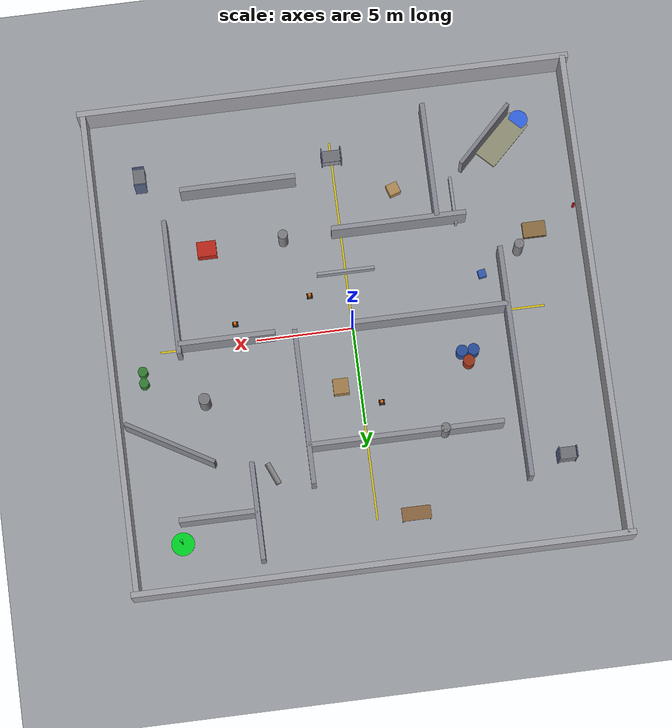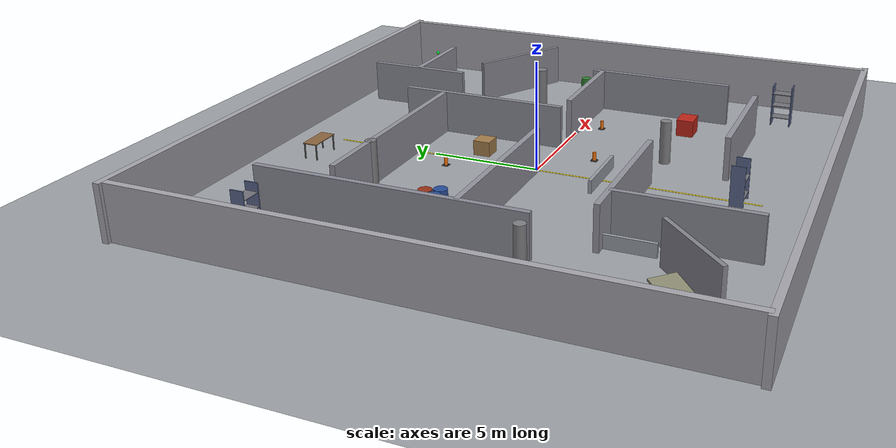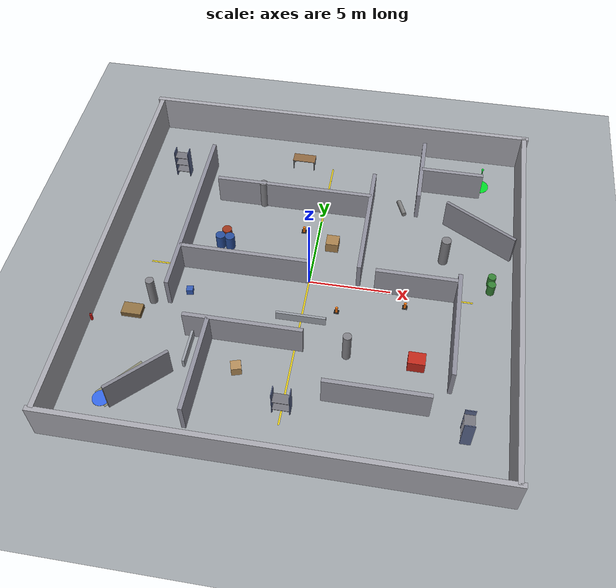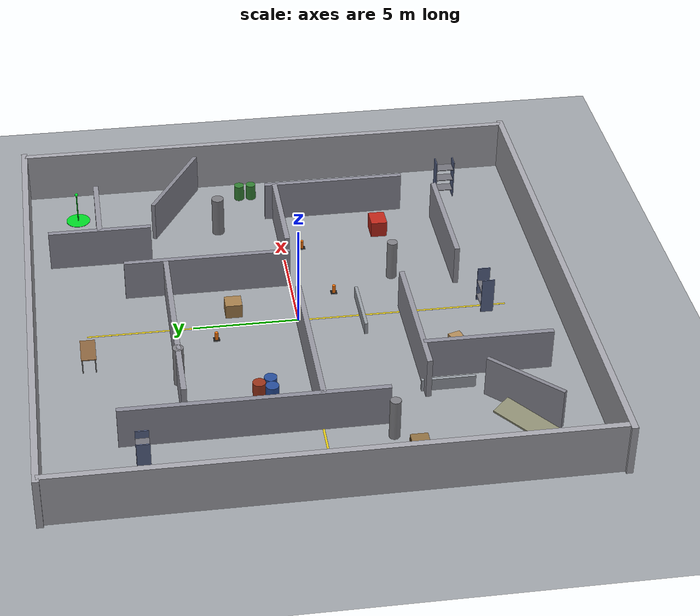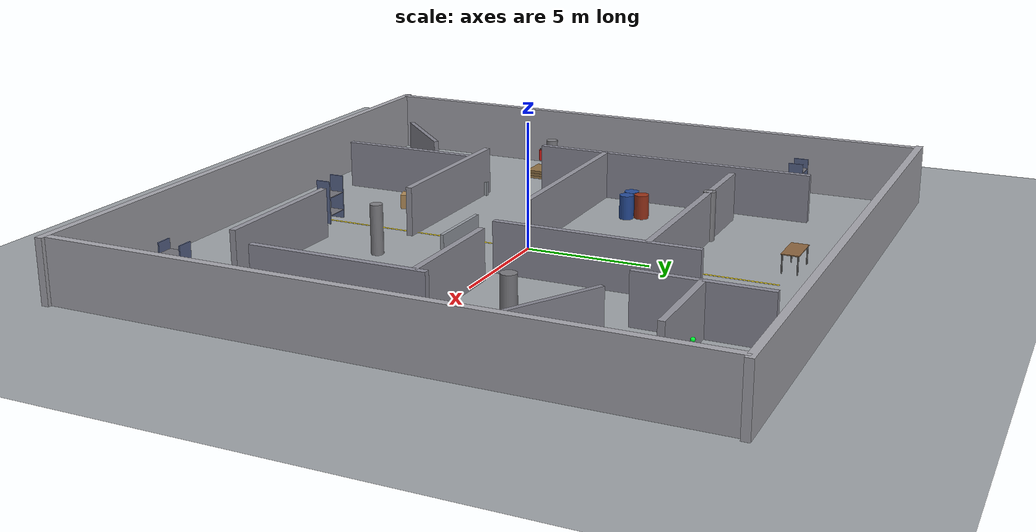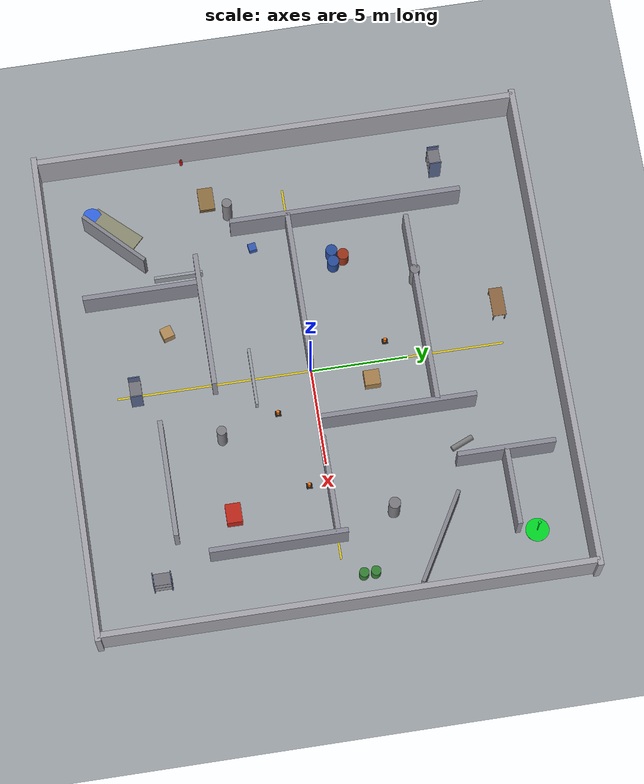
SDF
<?xml version="1.0"?>
<sdf version="1.8">
  <world name="maze_world">

    <!-- 1) SCENE, LIGHTING, ATMOSPHERE                                    -->

    <scene>
      <ambient>0.40 0.40 0.45 1</ambient>
      <background>0.78 0.84 0.95 1</background>
      <shadows>true</shadows>
      <fog>
        <color>0.85 0.90 0.98 1</color>
        <start>25</start>
        <end>60</end>
        <density>0.04</density>
      </fog>
    </scene>

    <!-- Primary sun — warm directional light with strong shadows -->
    <light type="directional" name="sun">
      <cast_shadows>true</cast_shadows>
      <pose>0 0 50 0 0 0</pose>
      <diffuse>1.0 0.96 0.88 1</diffuse>
      <specular>0.4 0.38 0.35 1</specular>
      <attenuation>
        <range>120</range>
        <constant>0.9</constant>
        <linear>0.005</linear>
        <quadratic>0.0005</quadratic>
      </attenuation>
      <direction>-0.4 0.25 -0.9</direction>
    </light>

    <!-- Ambient fill (overhead, soft) -->
    <light type="point" name="ambient_fill">
      <cast_shadows>false</cast_shadows>
      <pose>0 0 12 0 0 0</pose>
      <diffuse>0.35 0.35 0.42 1</diffuse>
      <specular>0.08 0.08 0.08 1</specular>
      <attenuation>
        <range>60</range>
        <constant>0.8</constant>
        <linear>0.015</linear>
        <quadratic>0.001</quadratic>
      </attenuation>
    </light>

    <!-- Corridor spotlight — simulates overhead warehouse lamp NW area -->
    <light type="spot" name="corridor_light_nw">
      <cast_shadows>true</cast_shadows>
      <pose>-6 8 4 0 0 0</pose>
      <diffuse>0.95 0.90 0.75 1</diffuse>
      <specular>0.2 0.2 0.15 1</specular>
      <attenuation>
        <range>15</range>
        <constant>0.7</constant>
        <linear>0.05</linear>
        <quadratic>0.01</quadratic>
      </attenuation>
      <direction>0 0 -1</direction>
      <spot>
        <inner_angle>0.6</inner_angle>
        <outer_angle>1.2</outer_angle>
        <falloff>1.5</falloff>
      </spot>
    </light>

    <!-- Corridor spotlight — SE area -->
    <light type="spot" name="corridor_light_se">
      <cast_shadows>true</cast_shadows>
      <pose>7 -7 4 0 0 0</pose>
      <diffuse>0.95 0.90 0.75 1</diffuse>
      <specular>0.2 0.2 0.15 1</specular>
      <attenuation>
        <range>15</range>
        <constant>0.7</constant>
        <linear>0.05</linear>
        <quadratic>0.01</quadratic>
      </attenuation>
      <direction>0 0 -1</direction>
      <spot>
        <inner_angle>0.6</inner_angle>
        <outer_angle>1.2</outer_angle>
        <falloff>1.5</falloff>
      </spot>
    </light>

    <!-- 2) GROUND PLANE (Warehouse concrete floor)                        -->

    <model name="ground_plane">
      <static>true</static>
      <pose>0 0 0 0 0 0</pose>
      <link name="link">
        <collision name="collision">
          <geometry>
            <plane><normal>0 0 1</normal><size>100 100</size></plane>
          </geometry>
          <surface>
            <friction>
              <ode><mu>0.8</mu><mu2>0.8</mu2></ode>
            </friction>
          </surface>
        </collision>
        <visual name="visual">
          <geometry>
            <plane><normal>0 0 1</normal><size>100 100</size></plane>
          </geometry>
          <material>
            <ambient>0.62 0.64 0.66 1</ambient>
            <diffuse>0.62 0.64 0.66 1</diffuse>
            <specular>0.08 0.08 0.08 1</specular>
          </material>
        </visual>
      </link>
    </model>

    <!-- Floor markings — yellow safety lines along corridors -->
    <model name="floor_line_1">
      <static>true</static>
      <pose>0 0 0.002 0 0 0</pose>
      <link name="link">
        <visual name="v">
          <geometry><box><size>20 0.1 0.003</size></box></geometry>
          <material>
            <ambient>0.9 0.8 0.1 1</ambient>
            <diffuse>0.9 0.8 0.1 1</diffuse>
            <emissive>0.15 0.12 0.0 1</emissive>
          </material>
        </visual>
      </link>
    </model>

    <model name="floor_line_2">
      <static>true</static>
      <pose>0 0 0.002 0 0 1.5708</pose>
      <link name="link">
        <visual name="v">
          <geometry><box><size>20 0.1 0.003</size></box></geometry>
          <material>
            <ambient>0.9 0.8 0.1 1</ambient>
            <diffuse>0.9 0.8 0.1 1</diffuse>
            <emissive>0.15 0.12 0.0 1</emissive>
          </material>
        </visual>
      </link>
    </model>

    <!-- 3) PERIMETER WALLS (25 m × 25 m warehouse, 2.5 m tall)           -->

    <!-- Wall material: industrial concrete gray -->
    <model name="wall_north">
      <pose>0 12.5 1.25 0 0 0</pose>
      <static>true</static>
      <link name="link">
        <visual name="v">
          <geometry><box><size>25.6 0.3 2.5</size></box></geometry>
          <material>
            <ambient>0.65 0.65 0.68 1</ambient>
            <diffuse>0.65 0.65 0.68 1</diffuse>
            <specular>0.03 0.03 0.03 1</specular>
          </material>
        </visual>
        <collision name="c"><geometry><box><size>25.6 0.3 2.5</size></box></geometry></collision>
      </link>
    </model>

    <model name="wall_south">
      <pose>0 -12.5 1.25 0 0 0</pose>
      <static>true</static>
      <link name="link">
        <visual name="v">
          <geometry><box><size>25.6 0.3 2.5</size></box></geometry>
          <material>
            <ambient>0.65 0.65 0.68 1</ambient>
            <diffuse>0.65 0.65 0.68 1</diffuse>
            <specular>0.03 0.03 0.03 1</specular>
          </material>
        </visual>
        <collision name="c"><geometry><box><size>25.6 0.3 2.5</size></box></geometry></collision>
      </link>
    </model>

    <model name="wall_east">
      <pose>12.5 0 1.25 0 0 0</pose>
      <static>true</static>
      <link name="link">
        <visual name="v">
          <geometry><box><size>0.3 25 2.5</size></box></geometry>
          <material>
            <ambient>0.65 0.65 0.68 1</ambient>
            <diffuse>0.65 0.65 0.68 1</diffuse>
            <specular>0.03 0.03 0.03 1</specular>
          </material>
        </visual>
        <collision name="c"><geometry><box><size>0.3 25 2.5</size></box></geometry></collision>
      </link>
    </model>

    <model name="wall_west">
      <pose>-12.5 0 1.25 0 0 0</pose>
      <static>true</static>
      <link name="link">
        <visual name="v">
          <geometry><box><size>0.3 25 2.5</size></box></geometry>
          <material>
            <ambient>0.65 0.65 0.68 1</ambient>
            <diffuse>0.65 0.65 0.68 1</diffuse>
            <specular>0.03 0.03 0.03 1</specular>
          </material>
        </visual>
        <collision name="c"><geometry><box><size>0.3 25 2.5</size></box></geometry></collision>
      </link>
    </model>

    <!-- 4) INNER MAZE WALLS (Corridors, rooms, dead-ends)                 -->

    <!-- ── Horizontal walls (along X) ── -->

    <!-- Long central divider with gap -->
    <model name="wall_h_center_left">
      <pose>-4 0 1.0 0 0 0</pose>
      <static>true</static>
      <link name="link">
        <visual name="v"><geometry><box><size>8 0.25 2.0</size></box></geometry>
          <material><ambient>0.58 0.58 0.62 1</ambient><diffuse>0.58 0.58 0.62 1</diffuse></material>
        </visual>
        <collision name="c"><geometry><box><size>8 0.25 2.0</size></box></geometry></collision>
      </link>
    </model>

    <model name="wall_h_center_right">
      <pose>6.5 0 1.0 0 0 0</pose>
      <static>true</static>
      <link name="link">
        <visual name="v"><geometry><box><size>5 0.25 2.0</size></box></geometry>
          <material><ambient>0.58 0.58 0.62 1</ambient><diffuse>0.58 0.58 0.62 1</diffuse></material>
        </visual>
        <collision name="c"><geometry><box><size>5 0.25 2.0</size></box></geometry></collision>
      </link>
    </model>

    <!-- North corridor wall -->
    <model name="wall_h_north_corridor">
      <pose>-2 6 1.0 0 0 0</pose>
      <static>true</static>
      <link name="link">
        <visual name="v"><geometry><box><size>10 0.25 2.0</size></box></geometry>
          <material><ambient>0.58 0.58 0.62 1</ambient><diffuse>0.58 0.58 0.62 1</diffuse></material>
        </visual>
        <collision name="c"><geometry><box><size>10 0.25 2.0</size></box></geometry></collision>
      </link>
    </model>

    <!-- Short dead-end wall upper area -->
    <model name="wall_h_deadend_north">
      <pose>8 9 1.0 0 0 0</pose>
      <static>true</static>
      <link name="link">
        <visual name="v"><geometry><box><size>4 0.25 2.0</size></box></geometry>
          <material><ambient>0.58 0.58 0.62 1</ambient><diffuse>0.58 0.58 0.62 1</diffuse></material>
        </visual>
        <collision name="c"><geometry><box><size>4 0.25 2.0</size></box></geometry></collision>
      </link>
    </model>

    <!-- South corridor wall -->
    <model name="wall_h_south_corridor">
      <pose>-3 -5 1.0 0 0 0</pose>
      <static>true</static>
      <link name="link">
        <visual name="v"><geometry><box><size>7 0.25 2.0</size></box></geometry>
          <material><ambient>0.58 0.58 0.62 1</ambient><diffuse>0.58 0.58 0.62 1</diffuse></material>
        </visual>
        <collision name="c"><geometry><box><size>7 0.25 2.0</size></box></geometry></collision>
      </link>
    </model>

    <!-- Far south room wall -->
    <model name="wall_h_south_room">
      <pose>5 -8 1.0 0 0 0</pose>
      <static>true</static>
      <link name="link">
        <visual name="v"><geometry><box><size>6 0.25 2.0</size></box></geometry>
          <material><ambient>0.58 0.58 0.62 1</ambient><diffuse>0.58 0.58 0.62 1</diffuse></material>
        </visual>
        <collision name="c"><geometry><box><size>6 0.25 2.0</size></box></geometry></collision>
      </link>
    </model>

    <!-- ── Vertical walls (along Y) ── -->

    <!-- West vertical corridor -->
    <model name="wall_v_west_corridor">
      <pose>-8 3 1.0 0 0 0</pose>
      <static>true</static>
      <link name="link">
        <visual name="v"><geometry><box><size>0.25 12 2.0</size></box></geometry>
          <material><ambient>0.55 0.55 0.60 1</ambient><diffuse>0.55 0.55 0.60 1</diffuse></material>
        </visual>
        <collision name="c"><geometry><box><size>0.25 12 2.0</size></box></geometry></collision>
      </link>
    </model>

    <!-- Central vertical barrier -->
    <model name="wall_v_center">
      <pose>3 4 1.0 0 0 0</pose>
      <static>true</static>
      <link name="link">
        <visual name="v"><geometry><box><size>0.25 8 2.0</size></box></geometry>
          <material><ambient>0.55 0.55 0.60 1</ambient><diffuse>0.55 0.55 0.60 1</diffuse></material>
        </visual>
        <collision name="c"><geometry><box><size>0.25 8 2.0</size></box></geometry></collision>
      </link>
    </model>

    <!-- East corridor divider -->
    <model name="wall_v_east_divider">
      <pose>9 -3 1.0 0 0 0</pose>
      <static>true</static>
      <link name="link">
        <visual name="v"><geometry><box><size>0.25 7 2.0</size></box></geometry>
          <material><ambient>0.55 0.55 0.60 1</ambient><diffuse>0.55 0.55 0.60 1</diffuse></material>
        </visual>
        <collision name="c"><geometry><box><size>0.25 7 2.0</size></box></geometry></collision>
      </link>
    </model>

    <!-- SW room partition -->
    <model name="wall_v_sw_partition">
      <pose>-5 -8 1.0 0 0 0</pose>
      <static>true</static>
      <link name="link">
        <visual name="v"><geometry><box><size>0.25 6 2.0</size></box></geometry>
          <material><ambient>0.55 0.55 0.60 1</ambient><diffuse>0.55 0.55 0.60 1</diffuse></material>
        </visual>
        <collision name="c"><geometry><box><size>0.25 6 2.0</size></box></geometry></collision>
      </link>
    </model>

    <!-- NE corner room wall -->
    <model name="wall_v_ne_room">
      <pose>6 9 1.0 0 0 0</pose>
      <static>true</static>
      <link name="link">
        <visual name="v"><geometry><box><size>0.25 5 2.0</size></box></geometry>
          <material><ambient>0.55 0.55 0.60 1</ambient><diffuse>0.55 0.55 0.60 1</diffuse></material>
        </visual>
        <collision name="c"><geometry><box><size>0.25 5 2.0</size></box></geometry></collision>
      </link>
    </model>

    <!-- ── Diagonal / angled walls ── -->

    <!-- Angled barrier SW -->
    <model name="wall_angled_sw">
      <pose>-8 -9 1.0 0 0 0.7854</pose>
      <static>true</static>
      <link name="link">
        <visual name="v"><geometry><box><size>4 0.2 2.0</size></box></geometry>
          <material><ambient>0.52 0.52 0.56 1</ambient><diffuse>0.52 0.52 0.56 1</diffuse></material>
        </visual>
        <collision name="c"><geometry><box><size>4 0.2 2.0</size></box></geometry></collision>
      </link>
    </model>

    <!-- Angled barrier NE -->
    <model name="wall_angled_ne">
      <pose>10 5 1.0 0 0 -0.5236</pose>
      <static>true</static>
      <link name="link">
        <visual name="v"><geometry><box><size>5 0.2 2.0</size></box></geometry>
          <material><ambient>0.52 0.52 0.56 1</ambient><diffuse>0.52 0.52 0.56 1</diffuse></material>
        </visual>
        <collision name="c"><geometry><box><size>5 0.2 2.0</size></box></geometry></collision>
      </link>
    </model>

    <!-- 5) STRUCTURAL PILLARS                                             -->

    <model name="pillar_1">
      <pose>-4 6 1.0 0 0 0</pose>
      <static>true</static>
      <link name="link">
        <visual name="v"><geometry><cylinder><radius>0.25</radius><length>2.0</length></cylinder></geometry>
          <material><ambient>0.50 0.50 0.52 1</ambient><diffuse>0.50 0.50 0.52 1</diffuse></material>
        </visual>
        <collision name="c"><geometry><cylinder><radius>0.25</radius><length>2.0</length></cylinder></geometry></collision>
      </link>
    </model>

    <model name="pillar_2">
      <pose>3 -5 1.0 0 0 0</pose>
      <static>true</static>
      <link name="link">
        <visual name="v"><geometry><cylinder><radius>0.25</radius><length>2.0</length></cylinder></geometry>
          <material><ambient>0.50 0.50 0.52 1</ambient><diffuse>0.50 0.50 0.52 1</diffuse></material>
        </visual>
        <collision name="c"><geometry><cylinder><radius>0.25</radius><length>2.0</length></cylinder></geometry></collision>
      </link>
    </model>

    <model name="pillar_3">
      <pose>8 3 1.0 0 0 0</pose>
      <static>true</static>
      <link name="link">
        <visual name="v"><geometry><cylinder><radius>0.30</radius><length>2.0</length></cylinder></geometry>
          <material><ambient>0.48 0.48 0.50 1</ambient><diffuse>0.48 0.48 0.50 1</diffuse></material>
        </visual>
        <collision name="c"><geometry><cylinder><radius>0.30</radius><length>2.0</length></cylinder></geometry></collision>
      </link>
    </model>

    <model name="pillar_4">
      <pose>-9 -3 1.0 0 0 0</pose>
      <static>true</static>
      <link name="link">
        <visual name="v"><geometry><cylinder><radius>0.25</radius><length>2.0</length></cylinder></geometry>
          <material><ambient>0.50 0.50 0.52 1</ambient><diffuse>0.50 0.50 0.52 1</diffuse></material>
        </visual>
        <collision name="c"><geometry><cylinder><radius>0.25</radius><length>2.0</length></cylinder></geometry></collision>
      </link>
    </model>

    <!-- 6) WAREHOUSE SHELVING UNITS                                       -->

    <!-- Shelf macro: upright + 3 shelves -->
    <!-- Shelf Unit A (NW warehouse area) -->
    <model name="shelf_unit_a">
      <pose>-10 8 0 0 0 0</pose>
      <static>true</static>
      <link name="link">
        <!-- Left upright -->
        <visual name="upright_l"><geometry><box><size>0.05 0.6 2.0</size></box></geometry>
          <pose>-0.45 0 1.0 0 0 0</pose>
          <material><ambient>0.35 0.40 0.55 1</ambient><diffuse>0.35 0.40 0.55 1</diffuse></material>
        </visual>
        <collision name="upright_l_c"><geometry><box><size>0.05 0.6 2.0</size></box></geometry>
          <pose>-0.45 0 1.0 0 0 0</pose>
        </collision>
        <!-- Right upright -->
        <visual name="upright_r"><geometry><box><size>0.05 0.6 2.0</size></box></geometry>
          <pose>0.45 0 1.0 0 0 0</pose>
          <material><ambient>0.35 0.40 0.55 1</ambient><diffuse>0.35 0.40 0.55 1</diffuse></material>
        </visual>
        <collision name="upright_r_c"><geometry><box><size>0.05 0.6 2.0</size></box></geometry>
          <pose>0.45 0 1.0 0 0 0</pose>
        </collision>
        <!-- Bottom shelf -->
        <visual name="shelf_bot"><geometry><box><size>0.9 0.6 0.03</size></box></geometry>
          <pose>0 0 0.4 0 0 0</pose>
          <material><ambient>0.45 0.45 0.48 1</ambient><diffuse>0.45 0.45 0.48 1</diffuse></material>
        </visual>
        <collision name="shelf_bot_c"><geometry><box><size>0.9 0.6 0.03</size></box></geometry>
          <pose>0 0 0.4 0 0 0</pose>
        </collision>
        <!-- Middle shelf -->
        <visual name="shelf_mid"><geometry><box><size>0.9 0.6 0.03</size></box></geometry>
          <pose>0 0 1.0 0 0 0</pose>
          <material><ambient>0.45 0.45 0.48 1</ambient><diffuse>0.45 0.45 0.48 1</diffuse></material>
        </visual>
        <collision name="shelf_mid_c"><geometry><box><size>0.9 0.6 0.03</size></box></geometry>
          <pose>0 0 1.0 0 0 0</pose>
        </collision>
        <!-- Top shelf -->
        <visual name="shelf_top"><geometry><box><size>0.9 0.6 0.03</size></box></geometry>
          <pose>0 0 1.6 0 0 0</pose>
          <material><ambient>0.45 0.45 0.48 1</ambient><diffuse>0.45 0.45 0.48 1</diffuse></material>
        </visual>
        <collision name="shelf_top_c"><geometry><box><size>0.9 0.6 0.03</size></box></geometry>
          <pose>0 0 1.6 0 0 0</pose>
        </collision>
      </link>
    </model>

    <!-- Shelf Unit B (SE storage area) -->
    <model name="shelf_unit_b">
      <pose>10 -9 0 0 0 1.5708</pose>
      <static>true</static>
      <link name="link">
        <visual name="upright_l"><geometry><box><size>0.05 0.6 2.0</size></box></geometry>
          <pose>-0.45 0 1.0 0 0 0</pose>
          <material><ambient>0.35 0.40 0.55 1</ambient><diffuse>0.35 0.40 0.55 1</diffuse></material>
        </visual>
        <collision name="upright_l_c"><geometry><box><size>0.05 0.6 2.0</size></box></geometry>
          <pose>-0.45 0 1.0 0 0 0</pose>
        </collision>
        <visual name="upright_r"><geometry><box><size>0.05 0.6 2.0</size></box></geometry>
          <pose>0.45 0 1.0 0 0 0</pose>
          <material><ambient>0.35 0.40 0.55 1</ambient><diffuse>0.35 0.40 0.55 1</diffuse></material>
        </visual>
        <collision name="upright_r_c"><geometry><box><size>0.05 0.6 2.0</size></box></geometry>
          <pose>0.45 0 1.0 0 0 0</pose>
        </collision>
        <visual name="shelf_bot"><geometry><box><size>0.9 0.6 0.03</size></box></geometry>
          <pose>0 0 0.4 0 0 0</pose>
          <material><ambient>0.45 0.45 0.48 1</ambient><diffuse>0.45 0.45 0.48 1</diffuse></material>
        </visual>
        <collision name="shelf_bot_c"><geometry><box><size>0.9 0.6 0.03</size></box></geometry>
          <pose>0 0 0.4 0 0 0</pose>
        </collision>
        <visual name="shelf_mid"><geometry><box><size>0.9 0.6 0.03</size></box></geometry>
          <pose>0 0 1.0 0 0 0</pose>
          <material><ambient>0.45 0.45 0.48 1</ambient><diffuse>0.45 0.45 0.48 1</diffuse></material>
        </visual>
        <collision name="shelf_mid_c"><geometry><box><size>0.9 0.6 0.03</size></box></geometry>
          <pose>0 0 1.0 0 0 0</pose>
        </collision>
        <visual name="shelf_top"><geometry><box><size>0.9 0.6 0.03</size></box></geometry>
          <pose>0 0 1.6 0 0 0</pose>
          <material><ambient>0.45 0.45 0.48 1</ambient><diffuse>0.45 0.45 0.48 1</diffuse></material>
        </visual>
        <collision name="shelf_top_c"><geometry><box><size>0.9 0.6 0.03</size></box></geometry>
          <pose>0 0 1.6 0 0 0</pose>
        </collision>
      </link>
    </model>

    <!-- Shelf Unit C (center-south) -->
    <model name="shelf_unit_c">
      <pose>0 -9 0 0 0 0</pose>
      <static>true</static>
      <link name="link">
        <visual name="upright_l"><geometry><box><size>0.05 0.6 1.8</size></box></geometry>
          <pose>-0.5 0 0.9 0 0 0</pose>
          <material><ambient>0.35 0.40 0.55 1</ambient><diffuse>0.35 0.40 0.55 1</diffuse></material>
        </visual>
        <collision name="upright_l_c"><geometry><box><size>0.05 0.6 1.8</size></box></geometry>
          <pose>-0.5 0 0.9 0 0 0</pose>
        </collision>
        <visual name="upright_r"><geometry><box><size>0.05 0.6 1.8</size></box></geometry>
          <pose>0.5 0 0.9 0 0 0</pose>
          <material><ambient>0.35 0.40 0.55 1</ambient><diffuse>0.35 0.40 0.55 1</diffuse></material>
        </visual>
        <collision name="upright_r_c"><geometry><box><size>0.05 0.6 1.8</size></box></geometry>
          <pose>0.5 0 0.9 0 0 0</pose>
        </collision>
        <visual name="shelf_bot"><geometry><box><size>1.0 0.6 0.03</size></box></geometry>
          <pose>0 0 0.35 0 0 0</pose>
          <material><ambient>0.45 0.45 0.48 1</ambient><diffuse>0.45 0.45 0.48 1</diffuse></material>
        </visual>
        <collision name="shelf_bot_c"><geometry><box><size>1.0 0.6 0.03</size></box></geometry>
          <pose>0 0 0.35 0 0 0</pose>
        </collision>
        <visual name="shelf_top"><geometry><box><size>1.0 0.6 0.03</size></box></geometry>
          <pose>0 0 1.1 0 0 0</pose>
          <material><ambient>0.45 0.45 0.48 1</ambient><diffuse>0.45 0.45 0.48 1</diffuse></material>
        </visual>
        <collision name="shelf_top_c"><geometry><box><size>1.0 0.6 0.03</size></box></geometry>
          <pose>0 0 1.1 0 0 0</pose>
        </collision>
      </link>
    </model>

    <!-- 7) BARRELS AND CRATES (Scattered obstacles)                       -->

    <!-- Industrial barrel (static) -->
    <model name="barrel_1">
      <pose>-6 2 0.5 0 0 0</pose>
      <static>true</static>
      <link name="link">
        <visual name="v"><geometry><cylinder><radius>0.3</radius><length>1.0</length></cylinder></geometry>
          <material><ambient>0.15 0.30 0.60 1</ambient><diffuse>0.15 0.30 0.60 1</diffuse></material>
        </visual>
        <collision name="c"><geometry><cylinder><radius>0.3</radius><length>1.0</length></cylinder></geometry></collision>
      </link>
    </model>

    <model name="barrel_2">
      <pose>-5.4 2 0.5 0 0 0</pose>
      <static>true</static>
      <link name="link">
        <visual name="v"><geometry><cylinder><radius>0.3</radius><length>1.0</length></cylinder></geometry>
          <material><ambient>0.15 0.30 0.60 1</ambient><diffuse>0.15 0.30 0.60 1</diffuse></material>
        </visual>
        <collision name="c"><geometry><cylinder><radius>0.3</radius><length>1.0</length></cylinder></geometry></collision>
      </link>
    </model>

    <model name="barrel_3">
      <pose>-5.7 2.55 0.5 0 0 0</pose>
      <static>true</static>
      <link name="link">
        <visual name="v"><geometry><cylinder><radius>0.3</radius><length>1.0</length></cylinder></geometry>
          <material><ambient>0.60 0.20 0.10 1</ambient><diffuse>0.60 0.20 0.10 1</diffuse></material>
        </visual>
        <collision name="c"><geometry><cylinder><radius>0.3</radius><length>1.0</length></cylinder></geometry></collision>
      </link>
    </model>

    <!-- Barrel cluster near east wall -->
    <model name="barrel_east_1">
      <pose>11 1 0.4 0 0 0</pose>
      <static>true</static>
      <link name="link">
        <visual name="v"><geometry><cylinder><radius>0.25</radius><length>0.8</length></cylinder></geometry>
          <material><ambient>0.20 0.50 0.20 1</ambient><diffuse>0.20 0.50 0.20 1</diffuse></material>
        </visual>
        <collision name="c"><geometry><cylinder><radius>0.25</radius><length>0.8</length></cylinder></geometry></collision>
      </link>
    </model>

    <model name="barrel_east_2">
      <pose>11 1.6 0.4 0 0 0</pose>
      <static>true</static>
      <link name="link">
        <visual name="v"><geometry><cylinder><radius>0.25</radius><length>0.8</length></cylinder></geometry>
          <material><ambient>0.20 0.50 0.20 1</ambient><diffuse>0.20 0.50 0.20 1</diffuse></material>
        </visual>
        <collision name="c"><geometry><cylinder><radius>0.25</radius><length>0.8</length></cylinder></geometry></collision>
      </link>
    </model>

    <!-- 8) DYNAMIC / MOVABLE OBSTACLES                                    -->

    <!-- Wooden pallet crate (pushable) -->
    <model name="crate_dynamic_1">
      <pose>1 3 0.35 0 0 0</pose>
      <link name="link">
        <inertial><mass>8</mass>
          <inertia><ixx>0.27</ixx><iyy>0.27</iyy><izz>0.27</izz><ixy>0</ixy><ixz>0</ixz><iyz>0</iyz></inertia>
        </inertial>
        <visual name="v"><geometry><box><size>0.8 0.8 0.7</size></box></geometry>
          <material><ambient>0.65 0.50 0.30 1</ambient><diffuse>0.65 0.50 0.30 1</diffuse></material>
        </visual>
        <collision name="c"><geometry><box><size>0.8 0.8 0.7</size></box></geometry>
          <surface><friction><ode><mu>0.6</mu><mu2>0.6</mu2></ode></friction></surface>
        </collision>
      </link>
    </model>

    <model name="crate_dynamic_2">
      <pose>-3 -7 0.3 0 0 0.3</pose>
      <link name="link">
        <inertial><mass>5</mass>
          <inertia><ixx>0.13</ixx><iyy>0.13</iyy><izz>0.13</izz><ixy>0</ixy><ixz>0</ixz><iyz>0</iyz></inertia>
        </inertial>
        <visual name="v"><geometry><box><size>0.6 0.6 0.6</size></box></geometry>
          <material><ambient>0.70 0.55 0.35 1</ambient><diffuse>0.70 0.55 0.35 1</diffuse></material>
        </visual>
        <collision name="c"><geometry><box><size>0.6 0.6 0.6</size></box></geometry>
          <surface><friction><ode><mu>0.6</mu><mu2>0.6</mu2></ode></friction></surface>
        </collision>
      </link>
    </model>

    <!-- Red hazard crate -->
    <model name="crate_hazard">
      <pose>7 -5 0.4 0 0 0</pose>
      <link name="link">
        <inertial><mass>12</mass>
          <inertia><ixx>0.5</ixx><iyy>0.5</iyy><izz>0.5</izz><ixy>0</ixy><ixz>0</ixz><iyz>0</iyz></inertia>
        </inertial>
        <visual name="v"><geometry><box><size>1.0 0.8 0.8</size></box></geometry>
          <material><ambient>0.75 0.15 0.10 1</ambient><diffuse>0.75 0.15 0.10 1</diffuse></material>
        </visual>
        <collision name="c"><geometry><box><size>1.0 0.8 0.8</size></box></geometry>
          <surface><friction><ode><mu>0.7</mu><mu2>0.7</mu2></ode></friction></surface>
        </collision>
      </link>
    </model>

    <!-- Small blue box (light, easily pushed) -->
    <model name="box_small_1">
      <pose>-7 -2 0.2 0 0 0.15</pose>
      <link name="link">
        <inertial><mass>2</mass>
          <inertia><ixx>0.03</ixx><iyy>0.03</iyy><izz>0.03</izz><ixy>0</ixy><ixz>0</ixz><iyz>0</iyz></inertia>
        </inertial>
        <visual name="v"><geometry><box><size>0.4 0.4 0.4</size></box></geometry>
          <material><ambient>0.20 0.35 0.70 1</ambient><diffuse>0.20 0.35 0.70 1</diffuse></material>
        </visual>
        <collision name="c"><geometry><box><size>0.4 0.4 0.4</size></box></geometry>
          <surface><friction><ode><mu>0.5</mu><mu2>0.5</mu2></ode></friction></surface>
        </collision>
      </link>
    </model>

    <!-- Cylinder obstacle (rolling hazard) -->
    <model name="pipe_obstacle">
      <pose>5 7 0.15 1.5708 0 0.4</pose>
      <link name="link">
        <inertial><mass>3</mass>
          <inertia><ixx>0.377</ixx><iyy>0.377</iyy><izz>0.034</izz><ixy>0</ixy><ixz>0</ixz><iyz>0</iyz></inertia>
        </inertial>
        <visual name="v"><geometry><cylinder><radius>0.15</radius><length>1.2</length></cylinder></geometry>
          <material><ambient>0.50 0.50 0.50 1</ambient><diffuse>0.50 0.50 0.50 1</diffuse></material>
        </visual>
        <collision name="c"><geometry><cylinder><radius>0.15</radius><length>1.2</length></cylinder></geometry>
          <surface><friction><ode><mu>0.4</mu><mu2>0.4</mu2></ode></friction></surface>
        </collision>
      </link>
    </model>

    <!-- 9) RAMP (Elevation change for SLAM challenge)                     -->

    <model name="ramp_south">
      <pose>-9 -9 0.15 0 -0.15 0.7854</pose>
      <static>true</static>
      <link name="link">
        <visual name="v"><geometry><box><size>3.0 1.2 0.08</size></box></geometry>
          <material>
            <ambient>0.55 0.55 0.45 1</ambient>
            <diffuse>0.55 0.55 0.45 1</diffuse>
          </material>
        </visual>
        <collision name="c"><geometry><box><size>3.0 1.2 0.08</size></box></geometry>
          <surface><friction><ode><mu>0.9</mu><mu2>0.9</mu2></ode></friction></surface>
        </collision>
      </link>
    </model>

    <!-- 10) TABLE / WORKBENCH                                             -->

    <model name="workbench">
      <pose>-2 10 0 0 0 0</pose>
      <static>true</static>
      <link name="link">
        <!-- Table top -->
        <visual name="top"><geometry><box><size>1.5 0.7 0.04</size></box></geometry>
          <pose>0 0 0.75 0 0 0</pose>
          <material><ambient>0.55 0.40 0.25 1</ambient><diffuse>0.55 0.40 0.25 1</diffuse></material>
        </visual>
        <collision name="top_c"><geometry><box><size>1.5 0.7 0.04</size></box></geometry>
          <pose>0 0 0.75 0 0 0</pose>
        </collision>
        <!-- Leg FL -->
        <visual name="leg_fl"><geometry><box><size>0.05 0.05 0.73</size></box></geometry>
          <pose>0.7 0.3 0.365 0 0 0</pose>
          <material><ambient>0.4 0.4 0.4 1</ambient><diffuse>0.4 0.4 0.4 1</diffuse></material>
        </visual>
        <collision name="leg_fl_c"><geometry><box><size>0.05 0.05 0.73</size></box></geometry>
          <pose>0.7 0.3 0.365 0 0 0</pose>
        </collision>
        <!-- Leg FR -->
        <visual name="leg_fr"><geometry><box><size>0.05 0.05 0.73</size></box></geometry>
          <pose>0.7 -0.3 0.365 0 0 0</pose>
          <material><ambient>0.4 0.4 0.4 1</ambient><diffuse>0.4 0.4 0.4 1</diffuse></material>
        </visual>
        <collision name="leg_fr_c"><geometry><box><size>0.05 0.05 0.73</size></box></geometry>
          <pose>0.7 -0.3 0.365 0 0 0</pose>
        </collision>
        <!-- Leg RL -->
        <visual name="leg_rl"><geometry><box><size>0.05 0.05 0.73</size></box></geometry>
          <pose>-0.7 0.3 0.365 0 0 0</pose>
          <material><ambient>0.4 0.4 0.4 1</ambient><diffuse>0.4 0.4 0.4 1</diffuse></material>
        </visual>
        <collision name="leg_rl_c"><geometry><box><size>0.05 0.05 0.73</size></box></geometry>
          <pose>-0.7 0.3 0.365 0 0 0</pose>
        </collision>
        <!-- Leg RR -->
        <visual name="leg_rr"><geometry><box><size>0.05 0.05 0.73</size></box></geometry>
          <pose>-0.7 -0.3 0.365 0 0 0</pose>
          <material><ambient>0.4 0.4 0.4 1</ambient><diffuse>0.4 0.4 0.4 1</diffuse></material>
        </visual>
        <collision name="leg_rr_c"><geometry><box><size>0.05 0.05 0.73</size></box></geometry>
          <pose>-0.7 -0.3 0.365 0 0 0</pose>
        </collision>
      </link>
    </model>

    <!-- 11) TRAFFIC CONES (Navigation landmarks)                          -->

    <model name="cone_1">
      <pose>2 -2 0 0 0 0</pose>
      <static>true</static>
      <link name="link">
        <!-- Cone base -->
        <visual name="base"><geometry><box><size>0.3 0.3 0.02</size></box></geometry>
          <pose>0 0 0.01 0 0 0</pose>
          <material><ambient>0.10 0.10 0.10 1</ambient><diffuse>0.10 0.10 0.10 1</diffuse></material>
        </visual>
        <collision name="base_c"><geometry><box><size>0.3 0.3 0.02</size></box></geometry>
          <pose>0 0 0.01 0 0 0</pose>
        </collision>
        <!-- Cone body (approximated as tapered cylinder) -->
        <visual name="body"><geometry><cylinder><radius>0.08</radius><length>0.4</length></cylinder></geometry>
          <pose>0 0 0.22 0 0 0</pose>
          <material>
            <ambient>0.95 0.45 0.05 1</ambient>
            <diffuse>0.95 0.45 0.05 1</diffuse>
            <emissive>0.15 0.05 0.0 1</emissive>
          </material>
        </visual>
        <collision name="body_c"><geometry><cylinder><radius>0.08</radius><length>0.4</length></cylinder></geometry>
          <pose>0 0 0.22 0 0 0</pose>
        </collision>
      </link>
    </model>

    <model name="cone_2">
      <pose>-1 4 0 0 0 0</pose>
      <static>true</static>
      <link name="link">
        <visual name="base"><geometry><box><size>0.3 0.3 0.02</size></box></geometry>
          <pose>0 0 0.01 0 0 0</pose>
          <material><ambient>0.10 0.10 0.10 1</ambient><diffuse>0.10 0.10 0.10 1</diffuse></material>
        </visual>
        <collision name="base_c"><geometry><box><size>0.3 0.3 0.02</size></box></geometry>
          <pose>0 0 0.01 0 0 0</pose>
        </collision>
        <visual name="body"><geometry><cylinder><radius>0.08</radius><length>0.4</length></cylinder></geometry>
          <pose>0 0 0.22 0 0 0</pose>
          <material>
            <ambient>0.95 0.45 0.05 1</ambient>
            <diffuse>0.95 0.45 0.05 1</diffuse>
            <emissive>0.15 0.05 0.0 1</emissive>
          </material>
        </visual>
        <collision name="body_c"><geometry><cylinder><radius>0.08</radius><length>0.4</length></cylinder></geometry>
          <pose>0 0 0.22 0 0 0</pose>
        </collision>
      </link>
    </model>

    <model name="cone_3">
      <pose>6 -1 0 0 0 0</pose>
      <static>true</static>
      <link name="link">
        <visual name="base"><geometry><box><size>0.3 0.3 0.02</size></box></geometry>
          <pose>0 0 0.01 0 0 0</pose>
          <material><ambient>0.10 0.10 0.10 1</ambient><diffuse>0.10 0.10 0.10 1</diffuse></material>
        </visual>
        <collision name="base_c"><geometry><box><size>0.3 0.3 0.02</size></box></geometry>
          <pose>0 0 0.01 0 0 0</pose>
        </collision>
        <visual name="body"><geometry><cylinder><radius>0.08</radius><length>0.4</length></cylinder></geometry>
          <pose>0 0 0.22 0 0 0</pose>
          <material>
            <ambient>0.95 0.45 0.05 1</ambient>
            <diffuse>0.95 0.45 0.05 1</diffuse>
            <emissive>0.15 0.05 0.0 1</emissive>
          </material>
        </visual>
        <collision name="body_c"><geometry><cylinder><radius>0.08</radius><length>0.4</length></cylinder></geometry>
          <pose>0 0 0.22 0 0 0</pose>
        </collision>
      </link>
    </model>

    <!-- 12) FIRE EXTINGUISHER (Wall-mounted landmark)                     -->

    <model name="fire_extinguisher">
      <pose>-12.2 -5 0 0 0 0</pose>
      <static>true</static>
      <link name="link">
        <!-- Cylinder body -->
        <visual name="body"><geometry><cylinder><radius>0.08</radius><length>0.5</length></cylinder></geometry>
          <pose>0 0 0.35 0 0 0</pose>
          <material><ambient>0.80 0.10 0.08 1</ambient><diffuse>0.80 0.10 0.08 1</diffuse></material>
        </visual>
        <collision name="body_c"><geometry><cylinder><radius>0.08</radius><length>0.5</length></cylinder></geometry>
          <pose>0 0 0.35 0 0 0</pose>
        </collision>
        <!-- Nozzle top -->
        <visual name="nozzle"><geometry><cylinder><radius>0.03</radius><length>0.08</length></cylinder></geometry>
          <pose>0 0 0.64 0 0 0</pose>
          <material><ambient>0.15 0.15 0.15 1</ambient><diffuse>0.15 0.15 0.15 1</diffuse></material>
        </visual>
      </link>
    </model>

    <!-- 13) STACKED PALLETS (Height variation for SLAM)                   -->

    <model name="pallet_stack">
      <pose>-10 -4 0 0 0 0</pose>
      <static>true</static>
      <link name="link">
        <!-- Bottom pallet -->
        <visual name="p1"><geometry><box><size>1.2 0.8 0.12</size></box></geometry>
          <pose>0 0 0.06 0 0 0</pose>
          <material><ambient>0.60 0.48 0.30 1</ambient><diffuse>0.60 0.48 0.30 1</diffuse></material>
        </visual>
        <collision name="p1_c"><geometry><box><size>1.2 0.8 0.12</size></box></geometry>
          <pose>0 0 0.06 0 0 0</pose>
        </collision>
        <!-- Middle pallet -->
        <visual name="p2"><geometry><box><size>1.2 0.8 0.12</size></box></geometry>
          <pose>0 0 0.18 0 0 0</pose>
          <material><ambient>0.58 0.46 0.28 1</ambient><diffuse>0.58 0.46 0.28 1</diffuse></material>
        </visual>
        <collision name="p2_c"><geometry><box><size>1.2 0.8 0.12</size></box></geometry>
          <pose>0 0 0.18 0 0 0</pose>
        </collision>
        <!-- Top pallet -->
        <visual name="p3"><geometry><box><size>1.2 0.8 0.12</size></box></geometry>
          <pose>0 0 0.30 0 0 0</pose>
          <material><ambient>0.56 0.44 0.26 1</ambient><diffuse>0.56 0.44 0.26 1</diffuse></material>
        </visual>
        <collision name="p3_c"><geometry><box><size>1.2 0.8 0.12</size></box></geometry>
          <pose>0 0 0.30 0 0 0</pose>
        </collision>
      </link>
    </model>

    <!-- 14) LOW PARTITION / HALF-WALL (Forces sensor-height awareness)    -->

    <model name="half_wall_1">
      <pose>0 -3 0.3 0 0 0</pose>
      <static>true</static>
      <link name="link">
        <visual name="v"><geometry><box><size>3.0 0.15 0.6</size></box></geometry>
          <material><ambient>0.60 0.62 0.65 1</ambient><diffuse>0.60 0.62 0.65 1</diffuse></material>
        </visual>
        <collision name="c"><geometry><box><size>3.0 0.15 0.6</size></box></geometry></collision>
      </link>
    </model>

    <model name="half_wall_2">
      <pose>-6 -6 0.3 0 0 1.5708</pose>
      <static>true</static>
      <link name="link">
        <visual name="v"><geometry><box><size>2.5 0.15 0.6</size></box></geometry>
          <material><ambient>0.60 0.62 0.65 1</ambient><diffuse>0.60 0.62 0.65 1</diffuse></material>
        </visual>
        <collision name="c"><geometry><box><size>2.5 0.15 0.6</size></box></geometry></collision>
      </link>
    </model>

    <!-- 15) GOAL MARKER (Glowing green disc)                              -->

    <model name="goal_marker">
      <pose>10 10 0.01 0 0 0</pose>
      <static>true</static>
      <link name="link">
        <visual name="disc">
          <geometry><cylinder><radius>0.6</radius><length>0.02</length></cylinder></geometry>
          <material>
            <ambient>0.0 0.85 0.15 1</ambient>
            <diffuse>0.0 0.85 0.15 1</diffuse>
            <emissive>0.0 0.50 0.05 1</emissive>
          </material>
        </visual>
        <!-- Tall beacon pole for far-range detection -->
        <visual name="beacon_pole">
          <geometry><cylinder><radius>0.03</radius><length>1.5</length></cylinder></geometry>
          <pose>0 0 0.77 0 0 0</pose>
          <material>
            <ambient>0.0 0.75 0.10 1</ambient>
            <diffuse>0.0 0.75 0.10 1</diffuse>
            <emissive>0.0 0.4 0.05 1</emissive>
          </material>
        </visual>
        <!-- Beacon top sphere -->
        <visual name="beacon_top">
          <geometry><sphere><radius>0.08</radius></sphere></geometry>
          <pose>0 0 1.56 0 0 0</pose>
          <material>
            <ambient>0.0 1.0 0.2 1</ambient>
            <diffuse>0.0 1.0 0.2 1</diffuse>
            <emissive>0.0 0.8 0.1 1</emissive>
          </material>
        </visual>
      </link>
    </model>

    <!-- 16) START MARKER                                                  -->

    <model name="start_marker">
      <pose>-10 -10 0.01 0 0 0</pose>
      <static>true</static>
      <link name="link">
        <visual name="disc">
          <geometry><cylinder><radius>0.5</radius><length>0.02</length></cylinder></geometry>
          <material>
            <ambient>0.2 0.4 0.9 1</ambient>
            <diffuse>0.2 0.4 0.9 1</diffuse>
            <emissive>0.05 0.1 0.4 1</emissive>
          </material>
        </visual>
      </link>
    </model>

    <!-- 17) WORLD PLUGINS                                                 -->

    <plugin filename="ignition-gazebo-sensors-system" name="ignition::gazebo::systems::Sensors">
      <render_engine>ogre2</render_engine>
    </plugin>
    <plugin filename="ignition-gazebo-physics-system" name="ignition::gazebo::systems::Physics"/>
    <plugin filename="ignition-gazebo-scene-broadcaster-system" name="ignition::gazebo::systems::SceneBroadcaster"/>
    <plugin filename="ignition-gazebo-user-commands-system" name="ignition::gazebo::systems::UserCommands"/>
    <plugin filename="libignition-gazebo6-imu-system.so" name="ignition::gazebo::systems::Imu"/>
    <plugin filename="libignition-gazebo6-magnetometer-system.so" name="ignition::gazebo::systems::Magnetometer"/>

    <!-- Contact system for collision events -->
    <plugin filename="ignition-gazebo-contact-system" name="ignition::gazebo::systems::Contact"/>

  </world>
</sdf>
